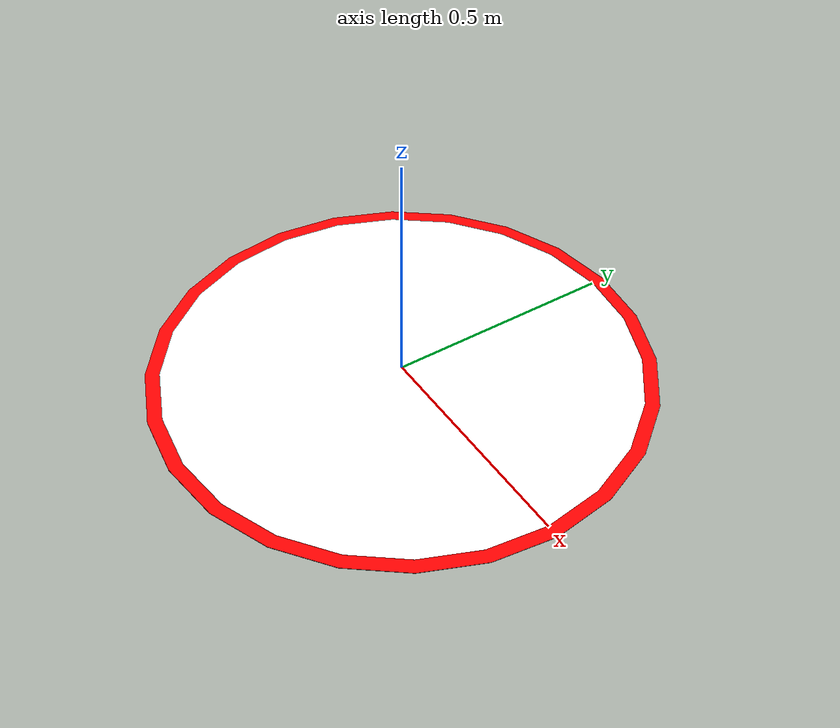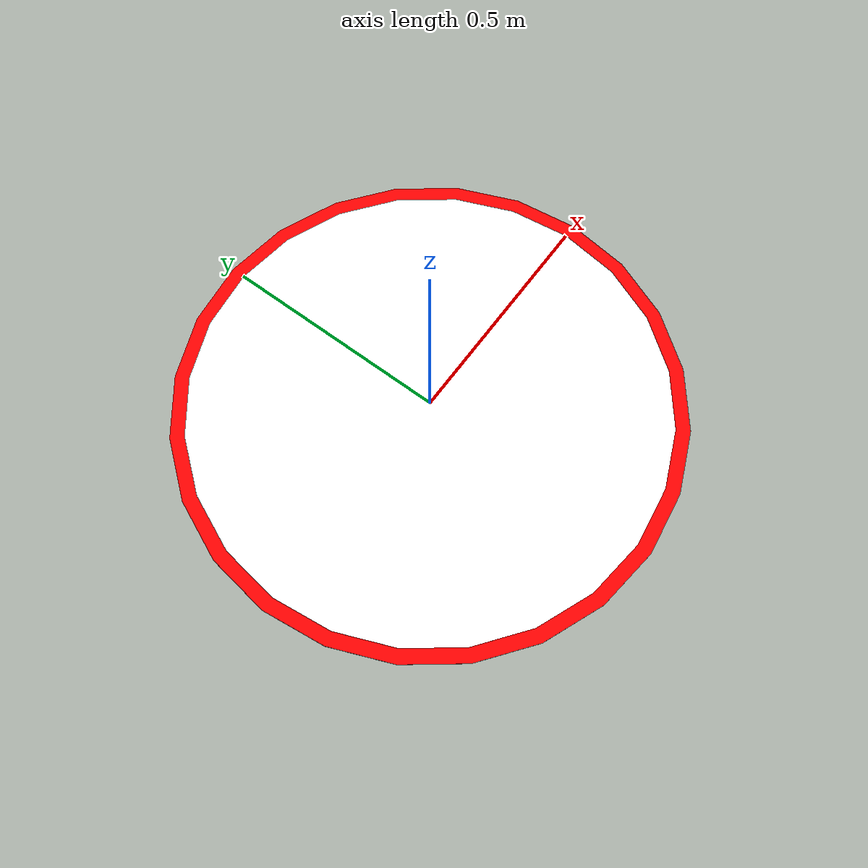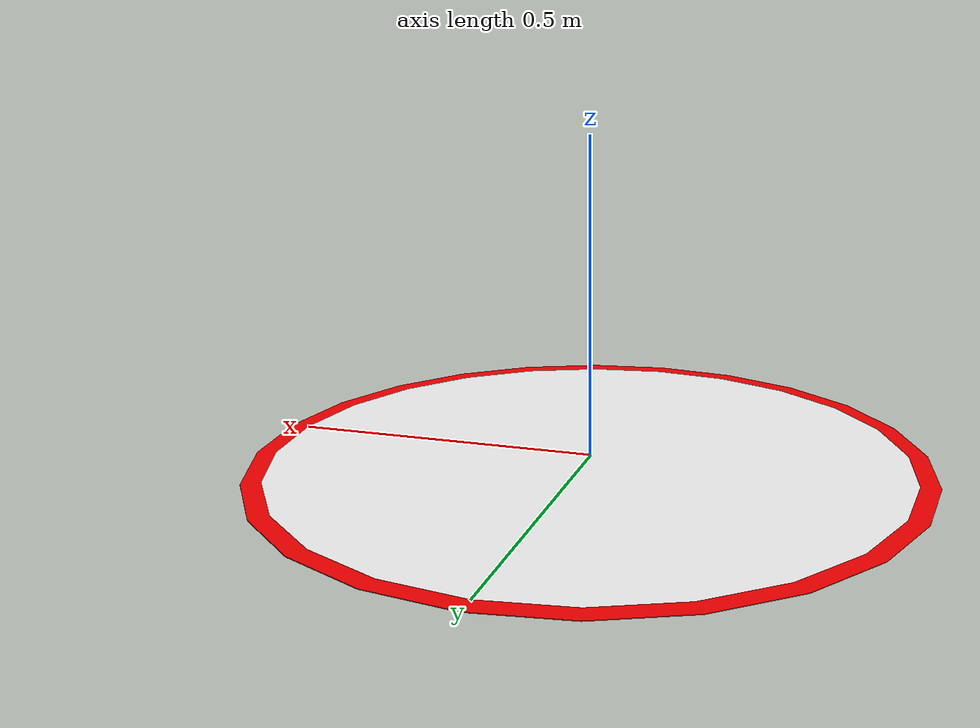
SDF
<?xml version="1.0"?>
<sdf version="1.8">
  <model name="point">
    <static>true</static>
    <pose>0 0 0.001 0 0 0</pose>
    <link name="point_link">
      <inertial>
        <mass>0.001</mass> <!-- Ajuste a massa conforme necessário -->
        <inertia>
          <ixx>1.0E-06</ixx>
          <iyy>1.0E-06</iyy>
          <izz>1.0E-06</izz>
        </inertia>
      </inertial>
      <collision name="collision">
        <geometry>
          <cylinder>
            <radius>0.33</radius> <!-- Raio total incluindo a borda -->
            <length>0.0009</length> <!-- Altura muito pequena -->
          </cylinder>
        </geometry>
      </collision>
      <!-- Cilindro externo (borda vermelha) -->
      <visual name='visual_border'>
        <geometry>
          <cylinder>
            <radius>0.53</radius> <!-- Raio total incluindo a borda -->
            <length>0.0009</length> <!-- Altura muito pequena -->
          </cylinder>
        </geometry>
        <material>
          <ambient>1 0 0 1</ambient> <!-- Cor vermelha -->
          <diffuse>1 0 0 1</diffuse>
          <specular>1 0 0 1</specular>
        </material>
      </visual>

      <!-- Cilindro interno (centro branco) -->
      <visual name='visual_center'>
        <geometry>
          <cylinder>
            <radius>0.5</radius> <!-- Raio do centro branco -->
            <length>0.001</length> <!-- Altura muito pequena -->
          </cylinder>
        </geometry>
        <material>
          <ambient>1 1 1 1</ambient> <!-- Cor branca -->
          <diffuse>1 1 1 1</diffuse>
          <specular>1 1 1 1</specular>
        </material>
      </visual>

    </link>
  </model>
</sdf>
